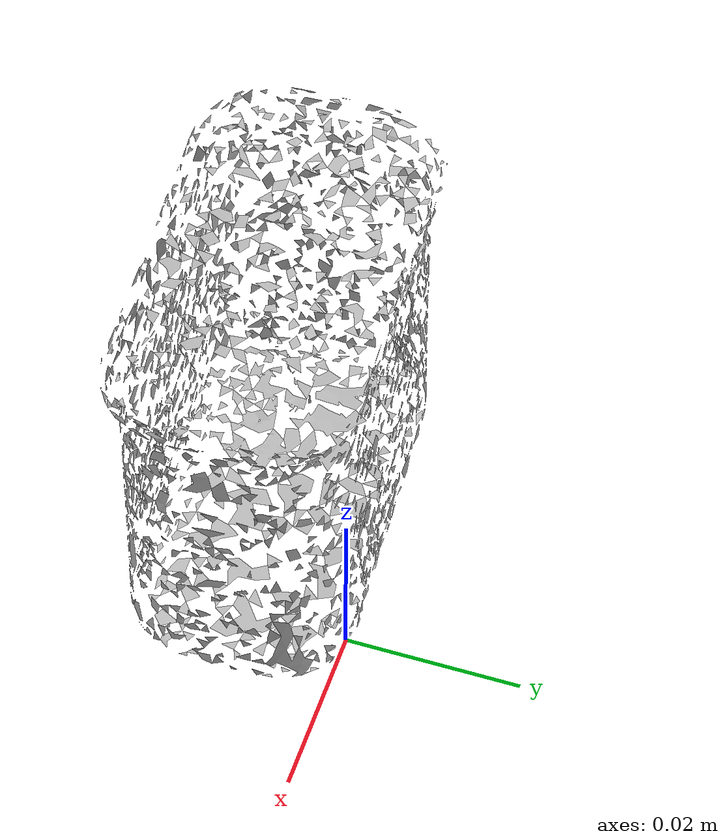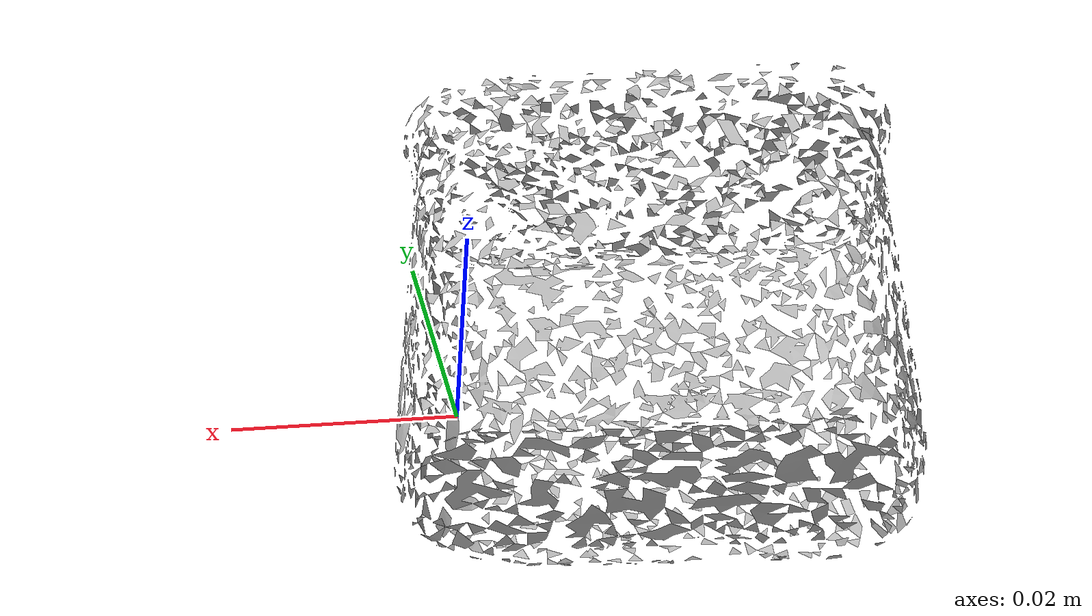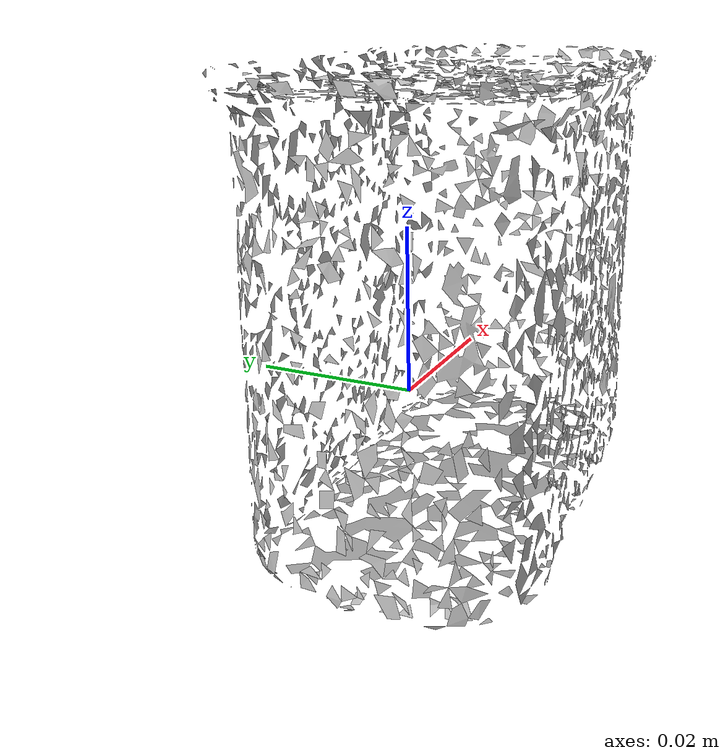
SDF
<?xml version='1.0'?>
<sdf version="1.6">
  <model name="potted_meat_can">
    <static>false</static>
    <link name="link">
      <inertial>
        <pose>-0.016840352216858736 -0.01335271439745596 0.01983085009135961 -1.577430392595329 -0.010759772887280408 1.6258710123374907</pose>
        <mass>0.0003541315255998319</mass>
        <inertia>
          <ixx>1</ixx>
          <ixy>0</ixy>
          <ixz>0</ixz>
          <iyy>1</iyy>
          <iyz>0</iyz>
          <izz>1</izz>
        </inertia>
      </inertial>
      <collision name="collision">
        <geometry>
          <mesh>
            <!-- Use a downsampled mesh for collisions -->
            <uri>model://010_potted_meat_can/downsampled.obj</uri>
            <scale>0.5 0.5 0.5</scale>
	        </mesh>
        </geometry>
        <surface>
      </surface>
      </collision>
      <visual name="visual">
        <geometry>
          <mesh>
            <uri>model://010_potted_meat_can/google_16k/textured.obj</uri>
            <scale>0.5 0.5 0.5</scale>
	        </mesh>
        </geometry>
        <material>
          <script>
            <uri>model://010_potted_meat_can/potted_meat_can.material</uri>
            <name>potted_meat_can</name>
          </script>
        </material>
      </visual>
    </link>
  </model>
</sdf>
